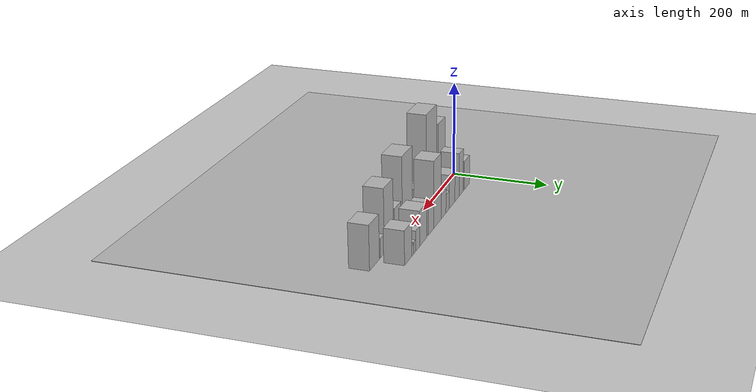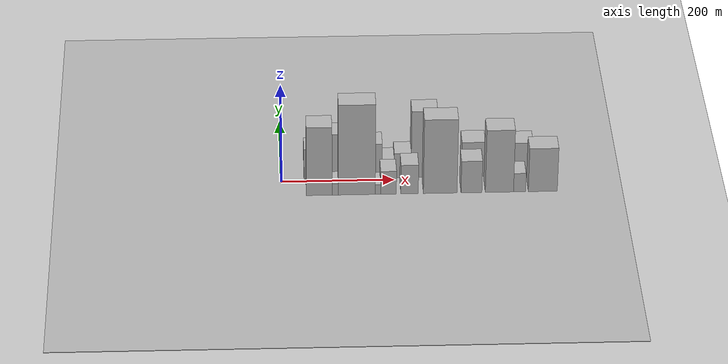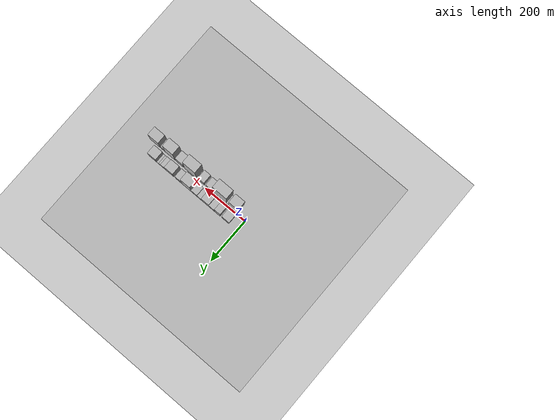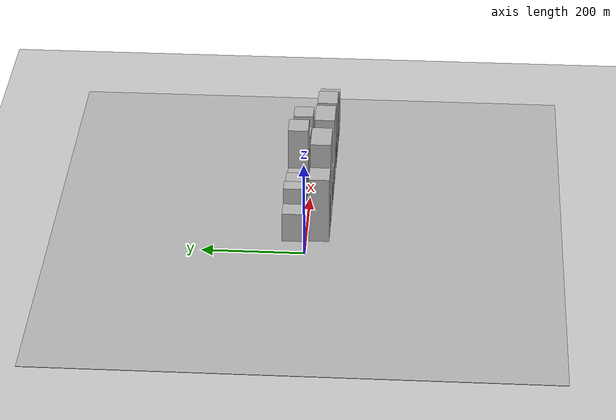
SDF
<?xml version="1.0" encoding="utf-8"?>

<sdf version="1.6">

   <world name="default">

      <gui fullscreen="0">

         <camera name="user_camera">

            <pose>-15 0 4.57585 0 0 0</pose>

            <view_controller>orbit</view_controller>

         </camera>

      </gui>

      <scene>

         <sky>

           <clouds>

             <speed>12</speed>

           </clouds>

         </sky>

         <ambient>0.4 0.4 0.4 1</ambient>

         <background>0.7 0.7 0.7 1</background>

         <shadows>1</shadows>

      </scene>

      <gravity>0 0 -9.8066</gravity>

      <magnetic_field>6e-06 2.3e-05 -4.2e-05</magnetic_field>

      <physics default="0" name="default_physics" type="ode">

         <ode>

            <solver>

               <type>quick</type>

               <iters>10</iters>

               <sor>1.0</sor>

               <use_dynamic_moi_rescaling>0</use_dynamic_moi_rescaling>

            </solver>

            <constraints>

               <cfm>0</cfm>

               <erp>0.2</erp>

               <contact_max_correcting_vel>100</contact_max_correcting_vel>

               <contact_surface_layer>0.001</contact_surface_layer>

            </constraints>

         </ode>

         <max_step_size>0.004</max_step_size>

         <real_time_factor>1</real_time_factor>

         <real_time_update_rate>250</real_time_update_rate>

      </physics>

      <light name="sun" type="directional">

         <cast_shadows>1</cast_shadows>

         <pose>0 0 10 0 0 0</pose>

         <diffuse>0.8 0.8 0.8 1</diffuse>

         <specular>0.2 0.2 0.2 1</specular>

         <attenuation>

            <range>1000</range>

            <constant>0.9</constant>

            <linear>0.01</linear>

            <quadratic>0.001</quadratic>

         </attenuation>

         <direction>-0.5 0.1 -0.9</direction>

      </light>

      <include>

         <name>ground_plane_1</name>

         <uri>model://HANNAS_ground_plane</uri>

         <pose>0 0 0  0 0 0</pose>

      </include>

      <include>

         <name>ground_plane_2</name>

         <uri>model://HANNAS_ground_plane</uri>

         <pose>100 0 0  0 0 0</pose>

      </include>

      <model name="building_1">

         <static>1</static>

         <pose frame="">58.5081 26.0000 0 0.000000 0.000000 1.570796</pose>

         <link name="link">

            <pose frame="">0 0 31.50 0 0 0</pose>

            <collision name="collision">

               <geometry>

                  <box>

                     <size>40.0000 37.0162 63.0000</size>

                  </box>

               </geometry>

               <max_contacts>10</max_contacts>

               <surface>

                  <contact>

                     <ode/>

                  </contact>

                  <bounce/>

                  <friction>

                     <torsional>

                        <ode/>

                     </torsional>

                     <ode/>

                  </friction>

               </surface>

            </collision>

            <visual name="visual">

               <cast_shadows>0</cast_shadows>

               <geometry>

                  <box>

                     <size>40.0000 37.0162 63.0000</size>

                  </box>

               </geometry>

               <material>

                  <script>

                     <uri>model://HANNAS_wall/materials/scripts</uri>

                     <uri>model://HANNAS_wall/materials/textures</uri>

                     <name>vrc/HANNAS_wall</name>

                  </script>

               </material>

            </visual>

            <self_collide>0</self_collide>

            <enable_wind>0</enable_wind>

            <kinematic>0</kinematic>

         </link>

      </model>

      <model name="building_2">

         <static>1</static>

         <pose frame="">98.3458 26.0000 0 0.000000 0.000000 1.570796</pose>

         <link name="link">

            <pose frame="">0 0 46.50 0 0 0</pose>

            <collision name="collision">

               <geometry>

                  <box>

                     <size>40.0000 28.6591 93.0000</size>

                  </box>

               </geometry>

               <max_contacts>10</max_contacts>

               <surface>

                  <contact>

                     <ode/>

                  </contact>

                  <bounce/>

                  <friction>

                     <torsional>

                        <ode/>

                     </torsional>

                     <ode/>

                  </friction>

               </surface>

            </collision>

            <visual name="visual">

               <cast_shadows>0</cast_shadows>

               <geometry>

                  <box>

                     <size>40.0000 28.6591 93.0000</size>

                  </box>

               </geometry>

               <material>

                  <script>

                     <uri>model://HANNAS_wall/materials/scripts</uri>

                     <uri>model://HANNAS_wall/materials/textures</uri>

                     <name>vrc/HANNAS_wall</name>

                  </script>

               </material>

            </visual>

            <self_collide>0</self_collide>

            <enable_wind>0</enable_wind>

            <kinematic>0</kinematic>

         </link>

      </model>

      <model name="building_3">

         <static>1</static>

         <pose frame="">126.8009 26.0000 0 0.000000 0.000000 1.570796</pose>

         <link name="link">

            <pose frame="">0 0 25.50 0 0 0</pose>

            <collision name="collision">

               <geometry>

                  <box>

                     <size>40.0000 28.2510 51.0000</size>

                  </box>

               </geometry>

               <max_contacts>10</max_contacts>

               <surface>

                  <contact>

                     <ode/>

                  </contact>

                  <bounce/>

                  <friction>

                     <torsional>

                        <ode/>

                     </torsional>

                     <ode/>

                  </friction>

               </surface>

            </collision>

            <visual name="visual">

               <cast_shadows>0</cast_shadows>

               <geometry>

                  <box>

                     <size>40.0000 28.2510 51.0000</size>

                  </box>

               </geometry>

               <material>

                  <script>

                     <uri>model://HANNAS_wall/materials/scripts</uri>

                     <uri>model://HANNAS_wall/materials/textures</uri>

                     <name>vrc/HANNAS_wall</name>

                  </script>

               </material>

            </visual>

            <self_collide>0</self_collide>

            <enable_wind>0</enable_wind>

            <kinematic>0</kinematic>

         </link>

      </model>

      <model name="building_4">

         <static>1</static>

         <pose frame="">159.5957 26.0000 0 0.000000 0.000000 1.570796</pose>

         <link name="link">

            <pose frame="">0 0 36.00 0 0 0</pose>

            <collision name="collision">

               <geometry>

                  <box>

                     <size>40.0000 37.3388 72.0000</size>

                  </box>

               </geometry>

               <max_contacts>10</max_contacts>

               <surface>

                  <contact>

                     <ode/>

                  </contact>

                  <bounce/>

                  <friction>

                     <torsional>

                        <ode/>

                     </torsional>

                     <ode/>

                  </friction>

               </surface>

            </collision>

            <visual name="visual">

               <cast_shadows>0</cast_shadows>

               <geometry>

                  <box>

                     <size>40.0000 37.3388 72.0000</size>

                  </box>

               </geometry>

               <material>

                  <script>

                     <uri>model://HANNAS_wall/materials/scripts</uri>

                     <uri>model://HANNAS_wall/materials/textures</uri>

                     <name>vrc/HANNAS_wall</name>

                  </script>

               </material>

            </visual>

            <self_collide>0</self_collide>

            <enable_wind>0</enable_wind>

            <kinematic>0</kinematic>

         </link>

      </model>

      <model name="building_5">

         <static>1</static>

         <pose frame="">188.9853 26.0000 0 0.000000 0.000000 1.570796</pose>

         <link name="link">

            <pose frame="">0 0 19.50 0 0 0</pose>

            <collision name="collision">

               <geometry>

                  <box>

                     <size>40.0000 21.4404 39.0000</size>

                  </box>

               </geometry>

               <max_contacts>10</max_contacts>

               <surface>

                  <contact>

                     <ode/>

                  </contact>

                  <bounce/>

                  <friction>

                     <torsional>

                        <ode/>

                     </torsional>

                     <ode/>

                  </friction>

               </surface>

            </collision>

            <visual name="visual">

               <cast_shadows>0</cast_shadows>

               <geometry>

                  <box>

                     <size>40.0000 21.4404 39.0000</size>

                  </box>

               </geometry>

               <material>

                  <script>

                     <uri>model://HANNAS_wall/materials/scripts</uri>

                     <uri>model://HANNAS_wall/materials/textures</uri>

                     <name>vrc/HANNAS_wall</name>

                  </script>

               </material>

            </visual>

            <self_collide>0</self_collide>

            <enable_wind>0</enable_wind>

            <kinematic>0</kinematic>

         </link>

      </model>

      <model name="building_6">

         <static>1</static>

         <pose frame="">214.7154 26.0000 0 0.000000 0.000000 1.570796</pose>

         <link name="link">

            <pose frame="">0 0 25.50 0 0 0</pose>

            <collision name="collision">

               <geometry>

                  <box>

                     <size>40.0000 30.0197 51.0000</size>

                  </box>

               </geometry>

               <max_contacts>10</max_contacts>

               <surface>

                  <contact>

                     <ode/>

                  </contact>

                  <bounce/>

                  <friction>

                     <torsional>

                        <ode/>

                     </torsional>

                     <ode/>

                  </friction>

               </surface>

            </collision>

            <visual name="visual">

               <cast_shadows>0</cast_shadows>

               <geometry>

                  <box>

                     <size>40.0000 30.0197 51.0000</size>

                  </box>

               </geometry>

               <material>

                  <script>

                     <uri>model://HANNAS_wall/materials/scripts</uri>

                     <uri>model://HANNAS_wall/materials/textures</uri>

                     <name>vrc/HANNAS_wall</name>

                  </script>

               </material>

            </visual>

            <self_collide>0</self_collide>

            <enable_wind>0</enable_wind>

            <kinematic>0</kinematic>

         </link>

      </model>

      <model name="building_7">

         <static>1</static>

         <pose frame="">252.4401 26.0000 0 0.000000 0.000000 1.570796</pose>

         <link name="link">

            <pose frame="">0 0 69.00 0 0 0</pose>

            <collision name="collision">

               <geometry>

                  <box>

                     <size>40.0000 45.4296 138.0000</size>

                  </box>

               </geometry>

               <max_contacts>10</max_contacts>

               <surface>

                  <contact>

                     <ode/>

                  </contact>

                  <bounce/>

                  <friction>

                     <torsional>

                        <ode/>

                     </torsional>

                     <ode/>

                  </friction>

               </surface>

            </collision>

            <visual name="visual">

               <cast_shadows>0</cast_shadows>

               <geometry>

                  <box>

                     <size>40.0000 45.4296 138.0000</size>

                  </box>

               </geometry>

               <material>

                  <script>

                     <uri>model://HANNAS_wall/materials/scripts</uri>

                     <uri>model://HANNAS_wall/materials/textures</uri>

                     <name>vrc/HANNAS_wall</name>

                  </script>

               </material>

            </visual>

            <self_collide>0</self_collide>

            <enable_wind>0</enable_wind>

            <kinematic>0</kinematic>

         </link>

      </model>

      <model name="building_8">

         <static>1</static>

         <pose frame="">292.1349 26.0000 0 0.000000 0.000000 1.570796</pose>

         <link name="link">

            <pose frame="">0 0 30.00 0 0 0</pose>

            <collision name="collision">

               <geometry>

                  <box>

                     <size>40.0000 33.9601 60.0000</size>

                  </box>

               </geometry>

               <max_contacts>10</max_contacts>

               <surface>

                  <contact>

                     <ode/>

                  </contact>

                  <bounce/>

                  <friction>

                     <torsional>

                        <ode/>

                     </torsional>

                     <ode/>

                  </friction>

               </surface>

            </collision>

            <visual name="visual">

               <cast_shadows>0</cast_shadows>

               <geometry>

                  <box>

                     <size>40.0000 33.9601 60.0000</size>

                  </box>

               </geometry>

               <material>

                  <script>

                     <uri>model://HANNAS_wall/materials/scripts</uri>

                     <uri>model://HANNAS_wall/materials/textures</uri>

                     <name>vrc/HANNAS_wall</name>

                  </script>

               </material>

            </visual>

            <self_collide>0</self_collide>

            <enable_wind>0</enable_wind>

            <kinematic>0</kinematic>

         </link>

      </model>

      <model name="building_9">

         <static>1</static>

         <pose frame="">339.7213 26.0000 0 0.000000 0.000000 1.570796</pose>

         <link name="link">

            <pose frame="">0 0 36.00 0 0 0</pose>

            <collision name="collision">

               <geometry>

                  <box>

                     <size>40.0000 41.2126 72.0000</size>

                  </box>

               </geometry>

               <max_contacts>10</max_contacts>

               <surface>

                  <contact>

                     <ode/>

                  </contact>

                  <bounce/>

                  <friction>

                     <torsional>

                        <ode/>

                     </torsional>

                     <ode/>

                  </friction>

               </surface>

            </collision>

            <visual name="visual">

               <cast_shadows>0</cast_shadows>

               <geometry>

                  <box>

                     <size>40.0000 41.2126 72.0000</size>

                  </box>

               </geometry>

               <material>

                  <script>

                     <uri>model://HANNAS_wall/materials/scripts</uri>

                     <uri>model://HANNAS_wall/materials/textures</uri>

                     <name>vrc/HANNAS_wall</name>

                  </script>

               </material>

            </visual>

            <self_collide>0</self_collide>

            <enable_wind>0</enable_wind>

            <kinematic>0</kinematic>

         </link>

      </model>

      <model name="building_10">

         <static>1</static>

         <pose frame="">371.8028 26.0000 0 0.000000 0.000000 1.570796</pose>

         <link name="link">

            <pose frame="">0 0 21.00 0 0 0</pose>

            <collision name="collision">

               <geometry>

                  <box>

                     <size>40.0000 22.9505 42.0000</size>

                  </box>

               </geometry>

               <max_contacts>10</max_contacts>

               <surface>

                  <contact>

                     <ode/>

                  </contact>

                  <bounce/>

                  <friction>

                     <torsional>

                        <ode/>

                     </torsional>

                     <ode/>

                  </friction>

               </surface>

            </collision>

            <visual name="visual">

               <cast_shadows>0</cast_shadows>

               <geometry>

                  <box>

                     <size>40.0000 22.9505 42.0000</size>

                  </box>

               </geometry>

               <material>

                  <script>

                     <uri>model://HANNAS_wall/materials/scripts</uri>

                     <uri>model://HANNAS_wall/materials/textures</uri>

                     <name>vrc/HANNAS_wall</name>

                  </script>

               </material>

            </visual>

            <self_collide>0</self_collide>

            <enable_wind>0</enable_wind>

            <kinematic>0</kinematic>

         </link>

      </model>

      <model name="building_11">

         <static>1</static>

         <pose frame="">388.9061 26.0000 0 0.000000 0.000000 1.570796</pose>

         <link name="link">

            <pose frame="">0 0 12.00 0 0 0</pose>

            <collision name="collision">

               <geometry>

                  <box>

                     <size>40.0000 11.2562 24.0000</size>

                  </box>

               </geometry>

               <max_contacts>10</max_contacts>

               <surface>

                  <contact>

                     <ode/>

                  </contact>

                  <bounce/>

                  <friction>

                     <torsional>

                        <ode/>

                     </torsional>

                     <ode/>

                  </friction>

               </surface>

            </collision>

            <visual name="visual">

               <cast_shadows>0</cast_shadows>

               <geometry>

                  <box>

                     <size>40.0000 11.2562 24.0000</size>

                  </box>

               </geometry>

               <material>

                  <script>

                     <uri>model://HANNAS_wall/materials/scripts</uri>

                     <uri>model://HANNAS_wall/materials/textures</uri>

                     <name>vrc/HANNAS_wall</name>

                  </script>

               </material>

            </visual>

            <self_collide>0</self_collide>

            <enable_wind>0</enable_wind>

            <kinematic>0</kinematic>

         </link>

      </model>

      <model name="building_12">

         <static>1</static>

         <pose frame="">399.2907 26.0000 0 0.000000 0.000000 1.570796</pose>

         <link name="link">

            <pose frame="">0 0 10.50 0 0 0</pose>

            <collision name="collision">

               <geometry>

                  <box>

                     <size>40.0000 9.5130 21.0000</size>

                  </box>

               </geometry>

               <max_contacts>10</max_contacts>

               <surface>

                  <contact>

                     <ode/>

                  </contact>

                  <bounce/>

                  <friction>

                     <torsional>

                        <ode/>

                     </torsional>

                     <ode/>

                  </friction>

               </surface>

            </collision>

            <visual name="visual">

               <cast_shadows>0</cast_shadows>

               <geometry>

                  <box>

                     <size>40.0000 9.5130 21.0000</size>

                  </box>

               </geometry>

               <material>

                  <script>

                     <uri>model://HANNAS_wall/materials/scripts</uri>

                     <uri>model://HANNAS_wall/materials/textures</uri>

                     <name>vrc/HANNAS_wall</name>

                  </script>

               </material>

            </visual>

            <self_collide>0</self_collide>

            <enable_wind>0</enable_wind>

            <kinematic>0</kinematic>

         </link>

      </model>

      <model name="building_13">

         <static>1</static>

         <pose frame="">424.3891 26.0000 0 0.000000 0.000000 1.570796</pose>

         <link name="link">

            <pose frame="">0 0 34.50 0 0 0</pose>

            <collision name="collision">

               <geometry>

                  <box>

                     <size>40.0000 40.6837 69.0000</size>

                  </box>

               </geometry>

               <max_contacts>10</max_contacts>

               <surface>

                  <contact>

                     <ode/>

                  </contact>

                  <bounce/>

                  <friction>

                     <torsional>

                        <ode/>

                     </torsional>

                     <ode/>

                  </friction>

               </surface>

            </collision>

            <visual name="visual">

               <cast_shadows>0</cast_shadows>

               <geometry>

                  <box>

                     <size>40.0000 40.6837 69.0000</size>

                  </box>

               </geometry>

               <material>

                  <script>

                     <uri>model://HANNAS_wall/materials/scripts</uri>

                     <uri>model://HANNAS_wall/materials/textures</uri>

                     <name>vrc/HANNAS_wall</name>

                  </script>

               </material>

            </visual>

            <self_collide>0</self_collide>

            <enable_wind>0</enable_wind>

            <kinematic>0</kinematic>

         </link>

      </model>

      <model name="building_14">

         <static>1</static>

         <pose frame="">65.4992 -26.0000 0 0.000000 0.000000 1.570796</pose>

         <link name="link">

            <pose frame="">0 0 70.50 0 0 0</pose>

            <collision name="collision">

               <geometry>

                  <box>

                     <size>40.0000 44.9984 141.0000</size>

                  </box>

               </geometry>

               <max_contacts>10</max_contacts>

               <surface>

                  <contact>

                     <ode/>

                  </contact>

                  <bounce/>

                  <friction>

                     <torsional>

                        <ode/>

                     </torsional>

                     <ode/>

                  </friction>

               </surface>

            </collision>

            <visual name="visual">

               <cast_shadows>0</cast_shadows>

               <geometry>

                  <box>

                     <size>40.0000 44.9984 141.0000</size>

                  </box>

               </geometry>

               <material>

                  <script>

                     <uri>model://HANNAS_wall/materials/scripts</uri>

                     <uri>model://HANNAS_wall/materials/textures</uri>

                     <name>vrc/HANNAS_wall</name>

                  </script>

               </material>

            </visual>

            <self_collide>0</self_collide>

            <enable_wind>0</enable_wind>

            <kinematic>0</kinematic>

         </link>

      </model>

      <model name="building_15">

         <static>1</static>

         <pose frame="">93.5555 -26.0000 0 0.000000 0.000000 1.570796</pose>

         <link name="link">

            <pose frame="">0 0 12.00 0 0 0</pose>

            <collision name="collision">

               <geometry>

                  <box>

                     <size>40.0000 11.1142 24.0000</size>

                  </box>

               </geometry>

               <max_contacts>10</max_contacts>

               <surface>

                  <contact>

                     <ode/>

                  </contact>

                  <bounce/>

                  <friction>

                     <torsional>

                        <ode/>

                     </torsional>

                     <ode/>

                  </friction>

               </surface>

            </collision>

            <visual name="visual">

               <cast_shadows>0</cast_shadows>

               <geometry>

                  <box>

                     <size>40.0000 11.1142 24.0000</size>

                  </box>

               </geometry>

               <material>

                  <script>

                     <uri>model://HANNAS_wall/materials/scripts</uri>

                     <uri>model://HANNAS_wall/materials/textures</uri>

                     <name>vrc/HANNAS_wall</name>

                  </script>

               </material>

            </visual>

            <self_collide>0</self_collide>

            <enable_wind>0</enable_wind>

            <kinematic>0</kinematic>

         </link>

      </model>

      <model name="building_16">

         <static>1</static>

         <pose frame="">131.6367 -26.0000 0 0.000000 0.000000 1.570796</pose>

         <link name="link">

            <pose frame="">0 0 93.00 0 0 0</pose>

            <collision name="collision">

               <geometry>

                  <box>

                     <size>40.0000 65.0482 186.0000</size>

                  </box>

               </geometry>

               <max_contacts>10</max_contacts>

               <surface>

                  <contact>

                     <ode/>

                  </contact>

                  <bounce/>

                  <friction>

                     <torsional>

                        <ode/>

                     </torsional>

                     <ode/>

                  </friction>

               </surface>

            </collision>

            <visual name="visual">

               <cast_shadows>0</cast_shadows>

               <geometry>

                  <box>

                     <size>40.0000 65.0482 186.0000</size>

                  </box>

               </geometry>

               <material>

                  <script>

                     <uri>model://HANNAS_wall/materials/scripts</uri>

                     <uri>model://HANNAS_wall/materials/textures</uri>

                     <name>vrc/HANNAS_wall</name>

                  </script>

               </material>

            </visual>

            <self_collide>0</self_collide>

            <enable_wind>0</enable_wind>

            <kinematic>0</kinematic>

         </link>

      </model>

      <model name="building_17">

         <static>1</static>

         <pose frame="">168.7996 -26.0000 0 0.000000 0.000000 1.570796</pose>

         <link name="link">

            <pose frame="">0 0 10.50 0 0 0</pose>

            <collision name="collision">

               <geometry>

                  <box>

                     <size>40.0000 9.2775 21.0000</size>

                  </box>

               </geometry>

               <max_contacts>10</max_contacts>

               <surface>

                  <contact>

                     <ode/>

                  </contact>

                  <bounce/>

                  <friction>

                     <torsional>

                        <ode/>

                     </torsional>

                     <ode/>

                  </friction>

               </surface>

            </collision>

            <visual name="visual">

               <cast_shadows>0</cast_shadows>

               <geometry>

                  <box>

                     <size>40.0000 9.2775 21.0000</size>

                  </box>

               </geometry>

               <material>

                  <script>

                     <uri>model://HANNAS_wall/materials/scripts</uri>

                     <uri>model://HANNAS_wall/materials/textures</uri>

                     <name>vrc/HANNAS_wall</name>

                  </script>

               </material>

            </visual>

            <self_collide>0</self_collide>

            <enable_wind>0</enable_wind>

            <kinematic>0</kinematic>

         </link>

      </model>

      <model name="building_18">

         <static>1</static>

         <pose frame="">187.2991 -26.0000 0 0.000000 0.000000 1.570796</pose>

         <link name="link">

            <pose frame="">0 0 24.00 0 0 0</pose>

            <collision name="collision">

               <geometry>

                  <box>

                     <size>40.0000 27.7216 48.0000</size>

                  </box>

               </geometry>

               <max_contacts>10</max_contacts>

               <surface>

                  <contact>

                     <ode/>

                  </contact>

                  <bounce/>

                  <friction>

                     <torsional>

                        <ode/>

                     </torsional>

                     <ode/>

                  </friction>

               </surface>

            </collision>

            <visual name="visual">

               <cast_shadows>0</cast_shadows>

               <geometry>

                  <box>

                     <size>40.0000 27.7216 48.0000</size>

                  </box>

               </geometry>

               <material>

                  <script>

                     <uri>model://HANNAS_wall/materials/scripts</uri>

                     <uri>model://HANNAS_wall/materials/textures</uri>

                     <name>vrc/HANNAS_wall</name>

                  </script>

               </material>

            </visual>

            <self_collide>0</self_collide>

            <enable_wind>0</enable_wind>

            <kinematic>0</kinematic>

         </link>

      </model>

      <model name="building_19">

         <static>1</static>

         <pose frame="">224.4749 -26.0000 0 0.000000 0.000000 1.570796</pose>

         <link name="link">

            <pose frame="">0 0 30.00 0 0 0</pose>

            <collision name="collision">

               <geometry>

                  <box>

                     <size>40.0000 30.6301 60.0000</size>

                  </box>

               </geometry>

               <max_contacts>10</max_contacts>

               <surface>

                  <contact>

                     <ode/>

                  </contact>

                  <bounce/>

                  <friction>

                     <torsional>

                        <ode/>

                     </torsional>

                     <ode/>

                  </friction>

               </surface>

            </collision>

            <visual name="visual">

               <cast_shadows>0</cast_shadows>

               <geometry>

                  <box>

                     <size>40.0000 30.6301 60.0000</size>

                  </box>

               </geometry>

               <material>

                  <script>

                     <uri>model://HANNAS_wall/materials/scripts</uri>

                     <uri>model://HANNAS_wall/materials/textures</uri>

                     <name>vrc/HANNAS_wall</name>

                  </script>

               </material>

            </visual>

            <self_collide>0</self_collide>

            <enable_wind>0</enable_wind>

            <kinematic>0</kinematic>

         </link>

      </model>

      <model name="building_20">

         <static>1</static>

         <pose frame="">278.4888 -26.0000 0 0.000000 0.000000 1.570796</pose>

         <link name="link">

            <pose frame="">0 0 76.50 0 0 0</pose>

            <collision name="collision">

               <geometry>

                  <box>

                     <size>40.0000 59.3978 153.0000</size>

                  </box>

               </geometry>

               <max_contacts>10</max_contacts>

               <surface>

                  <contact>

                     <ode/>

                  </contact>

                  <bounce/>

                  <friction>

                     <torsional>

                        <ode/>

                     </torsional>

                     <ode/>

                  </friction>

               </surface>

            </collision>

            <visual name="visual">

               <cast_shadows>0</cast_shadows>

               <geometry>

                  <box>

                     <size>40.0000 59.3978 153.0000</size>

                  </box>

               </geometry>

               <material>

                  <script>

                     <uri>model://HANNAS_wall/materials/scripts</uri>

                     <uri>model://HANNAS_wall/materials/textures</uri>

                     <name>vrc/HANNAS_wall</name>

                  </script>

               </material>

            </visual>

            <self_collide>0</self_collide>

            <enable_wind>0</enable_wind>

            <kinematic>0</kinematic>

         </link>

      </model>

      <model name="building_21">

         <static>1</static>

         <pose frame="">333.5885 -26.0000 0 0.000000 0.000000 1.570796</pose>

         <link name="link">

            <pose frame="">0 0 33.00 0 0 0</pose>

            <collision name="collision">

               <geometry>

                  <box>

                     <size>40.0000 36.8016 66.0000</size>

                  </box>

               </geometry>

               <max_contacts>10</max_contacts>

               <surface>

                  <contact>

                     <ode/>

                  </contact>

                  <bounce/>

                  <friction>

                     <torsional>

                        <ode/>

                     </torsional>

                     <ode/>

                  </friction>

               </surface>

            </collision>

            <visual name="visual">

               <cast_shadows>0</cast_shadows>

               <geometry>

                  <box>

                     <size>40.0000 36.8016 66.0000</size>

                  </box>

               </geometry>

               <material>

                  <script>

                     <uri>model://HANNAS_wall/materials/scripts</uri>

                     <uri>model://HANNAS_wall/materials/textures</uri>

                     <name>vrc/HANNAS_wall</name>

                  </script>

               </material>

            </visual>

            <self_collide>0</self_collide>

            <enable_wind>0</enable_wind>

            <kinematic>0</kinematic>

         </link>

      </model>

      <model name="building_22">

         <static>1</static>

         <pose frame="">382.8459 -26.0000 0 0.000000 0.000000 1.570796</pose>

         <link name="link">

            <pose frame="">0 0 64.50 0 0 0</pose>

            <collision name="collision">

               <geometry>

                  <box>

                     <size>40.0000 49.7132 129.0000</size>

                  </box>

               </geometry>

               <max_contacts>10</max_contacts>

               <surface>

                  <contact>

                     <ode/>

                  </contact>

                  <bounce/>

                  <friction>

                     <torsional>

                        <ode/>

                     </torsional>

                     <ode/>

                  </friction>

               </surface>

            </collision>

            <visual name="visual">

               <cast_shadows>0</cast_shadows>

               <geometry>

                  <box>

                     <size>40.0000 49.7132 129.0000</size>

                  </box>

               </geometry>

               <material>

                  <script>

                     <uri>model://HANNAS_wall/materials/scripts</uri>

                     <uri>model://HANNAS_wall/materials/textures</uri>

                     <name>vrc/HANNAS_wall</name>

                  </script>

               </material>

            </visual>

            <self_collide>0</self_collide>

            <enable_wind>0</enable_wind>

            <kinematic>0</kinematic>

         </link>

      </model>

      <model name="building_23">

         <static>1</static>

         <pose frame="">418.2600 -26.0000 0 0.000000 0.000000 1.570796</pose>

         <link name="link">

            <pose frame="">0 0 19.50 0 0 0</pose>

            <collision name="collision">

               <geometry>

                  <box>

                     <size>40.0000 21.1149 39.0000</size>

                  </box>

               </geometry>

               <max_contacts>10</max_contacts>

               <surface>

                  <contact>

                     <ode/>

                  </contact>

                  <bounce/>

                  <friction>

                     <torsional>

                        <ode/>

                     </torsional>

                     <ode/>

                  </friction>

               </surface>

            </collision>

            <visual name="visual">

               <cast_shadows>0</cast_shadows>

               <geometry>

                  <box>

                     <size>40.0000 21.1149 39.0000</size>

                  </box>

               </geometry>

               <material>

                  <script>

                     <uri>model://HANNAS_wall/materials/scripts</uri>

                     <uri>model://HANNAS_wall/materials/textures</uri>

                     <name>vrc/HANNAS_wall</name>

                  </script>

               </material>

            </visual>

            <self_collide>0</self_collide>

            <enable_wind>0</enable_wind>

            <kinematic>0</kinematic>

         </link>

      </model>

      <model name="building_24">

         <static>1</static>

         <pose frame="">459.3630 -26.0000 0 0.000000 0.000000 1.570796</pose>

         <link name="link">

            <pose frame="">0 0 45.00 0 0 0</pose>

            <collision name="collision">

               <geometry>

                  <box>

                     <size>40.0000 51.0911 90.0000</size>

                  </box>

               </geometry>

               <max_contacts>10</max_contacts>

               <surface>

                  <contact>

                     <ode/>

                  </contact>

                  <bounce/>

                  <friction>

                     <torsional>

                        <ode/>

                     </torsional>

                     <ode/>

                  </friction>

               </surface>

            </collision>

            <visual name="visual">

               <cast_shadows>0</cast_shadows>

               <geometry>

                  <box>

                     <size>40.0000 51.0911 90.0000</size>

                  </box>

               </geometry>

               <material>

                  <script>

                     <uri>model://HANNAS_wall/materials/scripts</uri>

                     <uri>model://HANNAS_wall/materials/textures</uri>

                     <name>vrc/HANNAS_wall</name>

                  </script>

               </material>

            </visual>

            <self_collide>0</self_collide>

            <enable_wind>0</enable_wind>

            <kinematic>0</kinematic>

         </link>

      </model>

   </world>

</sdf>

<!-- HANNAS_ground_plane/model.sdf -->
<sdf version="1.4">
<model name="HANNAS_ground_plane">
  <static>true</static>
    <link name="link">
      <collision name="collision">
        <geometry>
          <plane>
            <normal>0 0 1</normal>
            <size>1000 1000</size>
          </plane>
        </geometry>
        <surface>
          <friction>
            <ode>
              <mu>100</mu>
              <mu2>50</mu2>
            </ode>
          </friction>
        </surface>
      </collision>
      <visual name="visual">
        <cast_shadows>false</cast_shadows>
        <geometry>
          <plane>
            <normal>0 0 1</normal>
            <size>1000 1000</size>
          </plane>
        </geometry>
        <material>
          <script>
            <uri>model://HANNAS_ground_plane/materials/scripts/HANNAS_ground_plane.material</uri>
	    <uri>model://HANNAS_ground_plane/materials/textures</uri>
            <name>HANNASGroundPlane/Image</name>
          </script>
        </material>
      </visual>
    </link>
  </model>
</sdf>
